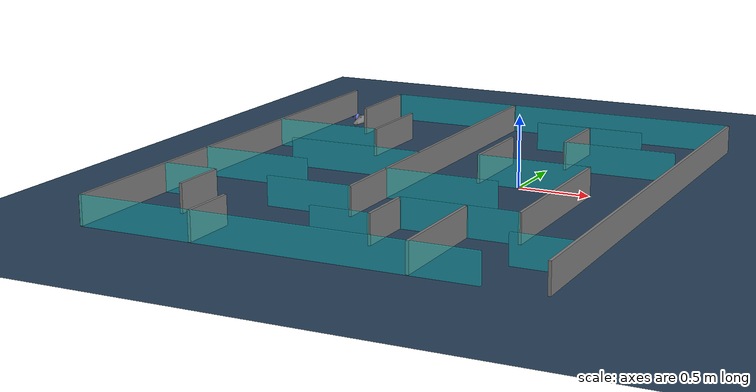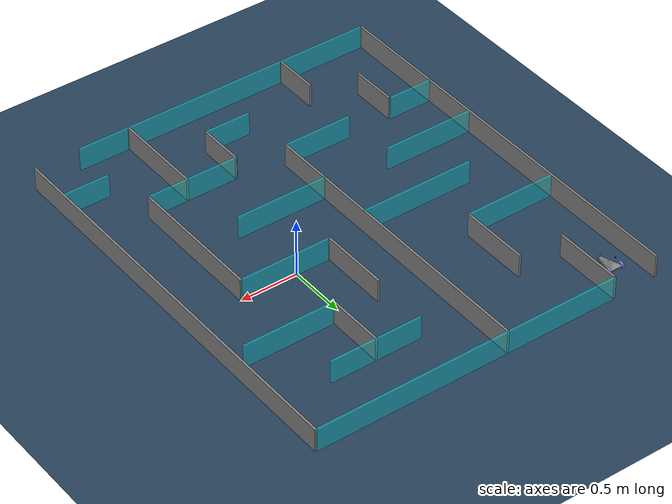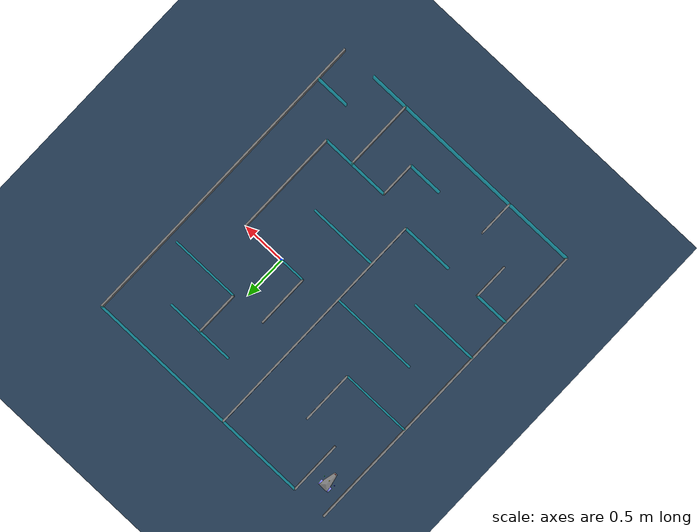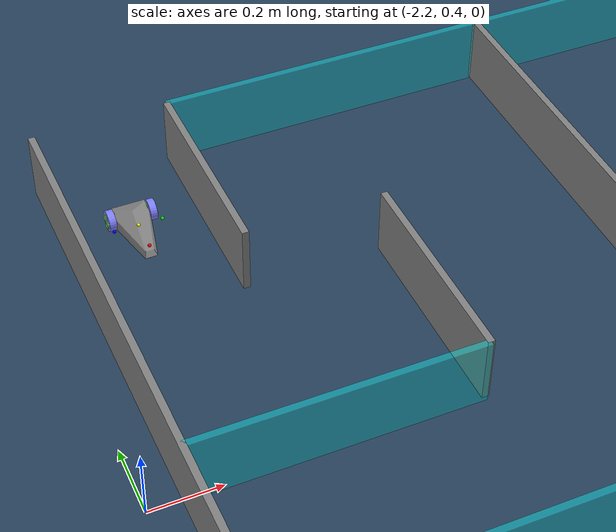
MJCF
<mujoco model="model scene">
  <include file="car.xml"/>

  <!-- Add some fluid viscosity to prevent the hanging box from jiggling forever -->
  <option viscosity="0.5"/>

  <statistic center="0 0 1" extent="0.3"/>

  <visual>
    <!-- Настройки камеры для хорошего обзора модели -->
    <global azimuth="120" elevation="-20"/>
    <map znear="0.01" zfar="100"/>
    <quality shadowsize="2048"/>
  </visual>

  <asset>
    <texture type="skybox" builtin="gradient" rgb1="0.3 0.5 0.7" rgb2="0 0 0" width="512" height="3072"/>
    <texture type="2d" name="groundplane" builtin="checker" mark="edge" rgb1="0.2 0.3 0.4" rgb2="0.1 0.2 0.3"
      markrgb="0.8 0.8 0.8" width="300" height="300"/>
    <material name="groundplane" texture="groundplane" texuniform="true" texrepeat="5 5" reflectance="0.2"/>
  </asset>

  <asset>
    <texture type="skybox" builtin="gradient" rgb1="0.6 0.8 1" rgb2="0 0 0" width="512" height="512"/>
    <material name="wall_mat" rgba="0.2 0.2 0.2 1"/>
    <material name="floor_mat" rgba="0.8 0.8 0.8 1"/>
  </asset>

  <worldbody>
    <light pos="0 0 1"/>
    <light pos="0 -0.2 1" dir="0 0.2 -0.8" directional="true"/>

    <body pos="0 0 0"   >

      <geom name="1" type="box" size="1.35 0.01 0.1 " pos="-0.35 1.6 0.1" rgba="0 1 2 0.4"/>
      <geom name="2" type="box" size="0.01 1.8 0.1 " pos="-2.1 -0.2 0.1" />
      <geom name="3" type="box" size="0.01 0.3 0.1 " pos="-1.7 1.3 0.1" />
      <geom name="5" type="box" size="0.01 0.3 0.1 " pos="-1.3 0.7 0.1" />
      <geom name="6" type="box" size="0.4 0.01 0.1 " pos="-1.7 0.4 0.1" rgba="0 1 2 0.4"/>
      <geom name="7" type="box" size="0.5 0.01 0.1 " pos="-1.2 -0.1 0.1" rgba="0 1 2 0.4"/>
      <geom name="8" type="box" size="0.01 1.35 0.1 " pos="-0.7 0.25 0.1" />
      <geom name="9" type="box" size="0.4 0.01 0.1 " pos="-1.7 -0.6 0.1" rgba="0 1 2 0.4"/>
      <geom name="10" type="box" size="0.3 0.01 0.1 " pos="-1 -1.1 0.1" rgba="0 1 2 0.4"/>
      <geom name="11" type="box" size="0.2 0.01 0.1 " pos="-1.9 -1.1 0.1" rgba="0 1 2 0.4"/>
      <geom name="12" type="box" size="0.01 0.2 0.1 " pos="-1.7 -1.3 0.1" />
      <geom name="13" type="box" size="1.35 0.01 0.1 " pos="-.75 -2 0.1" rgba="0 1 2 0.4"/>
      <geom name="14" type="box" size="0.01 0.2 0.1 " pos="-1.3 -1.8 0.1" />
      <geom name="15" type="box" size="0.4 0.01 0.1 " pos="-.3 -0.6 0.1" rgba="0 1 2 0.4"/>
      <geom name="16" type="box" size="0.2 0.01 0.1 " pos="-.5 -1.6 0.1" rgba="0 1 2 0.4"/>
      <geom name="17" type="box" size="0.01 0.2 0.1 " pos="-0.3 -1.4 0.1" />
      <geom name="18" type="box" size="0.4 0.01 0.1 " pos=".1 -1.2 0.1" rgba="0 1 2 0.4"/>
      <geom name="19" type="box" size="0.01 0.4 0.1 " pos="0.15 -1.6 0.1" />
      <geom name="20"   type="box" size="0.01 0.6 0.1 " pos="0.5 -0.6 0.1" />
      <geom name="21" type="box" size="0.4 0.01 0.1 " pos=".1 0 0.1" rgba="0 1 2 0.4"/>
      <geom name="22" type="box" size="0.01 0.3 0.1 " pos="-0.3 0.3 0.1" />
      <geom name="23" type="box" size="0.4 0.01 0.1 " pos=".1 1.1 0.1" rgba="0 1 2 0.4"/>
      <geom name="24" type="box" size="0.01 0.25 0.1 " pos="0.1 0.85 0.1" />
      <geom name="25" type="box" size="0.4 0.01 0.1 " pos=".5 0.6 0.1" rgba="0 1 2 0.4"/>
      <geom name="26" type="box" size="0.2 0.01 0.1 " pos=".8 -1.6 0.1" rgba="0 1 2 0.4"/>

      <geom type="box" size="0.01 1.8 0.1 " pos="1 -0.2 0.1" />

    </body>

  </worldbody>

</mujoco>

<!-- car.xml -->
<mujoco>
  <compiler autolimits="true"/>

  <asset>
    <texture name="grid" type="2d" builtin="checker" width="512" height="512" rgb1=".1 .2 .3" rgb2=".2 .3 .4"/>
    <material name="grid" texture="grid" texrepeat="1 1" texuniform="true" reflectance=".2"/>
    <mesh name="chasis" scale=".01 .006 .0015"
      vertex=" 9   2   0
              -10  10  10
               9  -2   0
               10  3  -10
               10 -3  -10
              -8   10 -10
              -10 -10  10
              -8  -10 -10
              -5   0   20"/>
  </asset>

  <default>
    <joint damping=".03" actuatorfrcrange="-0.5 0.5"/>
    <default class="wheel">
      <geom type="cylinder" size=".03 .01" rgba=".5 .5 1 1"/>
    </default>
    <default class="decor">
      <site type="box" rgba=".5 1 .5 1"/>
    </default>
  </default>

  <worldbody>

    <geom type="plane" size="3 3 .01" material="grid"/>
    <body name="car" pos="-1.9 1.3 .03" euler="0 0 270">
    <camera name="front_cam" mode="fixed" pos="0.1 0 0.1" euler="0 -50 270" fovy="120"/>

      <freejoint/>
      <light name="top light" pos="0 0 2" mode="trackcom" diffuse=".4 .4 .4"/>
      <geom name="chasis" type="mesh" mesh="chasis"/>
      <geom name="front wheel" pos=".08 0 -.015" type="sphere" size=".015" condim="1" priority="1"/>
      <light name="front light" pos=".1 0 .02" dir="2 0 -1" diffuse="1 1 1"/>
      <body name="left wheel" pos="-.07 .06 0" zaxis="0 1 0">
        <joint name="left"/>
        <geom class="wheel"/>
        <site class="decor" size=".006 .025 .012"/>
        <site class="decor" size=".025 .006 .012"/>
      </body>
      <body name="right wheel" pos="-.07 -.06 0" zaxis="0 1 0">
        <joint name="right"/>
        <geom class="wheel"/>
        <site class="decor" size=".006 .025 .012"/>
        <site class="decor" size=".025 .006 .012"/>
      </body>

    <!-- Новый site для IMU -->
    <site name="imu" pos="0 0 0.02" size="0.005" rgba="1 1 0 1"/>
    <!-- Сенсоры расстояния / касания -->
    <site name="sensor_front" pos="0.09 0 0.02" size="0.005" rgba="1 0 0 1"/>
    <site name="sensor_left"  pos="0 0.07 0.02" size="0.005" rgba="0 1 0 1"/>
    <site name="sensor_right" pos="0 -0.07 0.02" size="0.005" rgba="0 0 1 1"/>

    </body>
  </worldbody>

  <tendon>
    <fixed name="forward">
      <joint joint="left" coef=".5"/>
      <joint joint="right" coef=".5"/>
    </fixed>
    <fixed name="turn">
      <joint joint="left" coef="-.5"/>
      <joint joint="right" coef=".5"/>
    </fixed>
  </tendon>

  <actuator>
    <motor name="forward" tendon="forward" ctrlrange="-1 1"/>
    <motor name="turn" tendon="turn" ctrlrange="-1 1"/>
  </actuator>

  <sensor>
    <!-- Датчики нагрузки на двигатели -->
    <jointactuatorfrc name="right" joint="right"/>
    <jointactuatorfrc name="left" joint="left"/>

    <!-- Гироскоп -->
    <gyro name="gyro" site="imu"/>

    <!-- Акселерометр -->
    <accelerometer name="accel" site="imu"/>

    <!-- Лазерные дальномеры -->
    <rangefinder name="range_front" site="sensor_front"/>
    <rangefinder name="range_left" site="sensor_left"/>
    <rangefinder name="range_right" site="sensor_right"/>

    <!-- Сенсоры контакта (тач-сенсоры) -->
    <touch name="touch_front" site="sensor_front"/>
    <touch name="touch_left" site="sensor_left"/>
    <touch name="touch_right" site="sensor_right"/>

   </sensor>

</mujoco>
